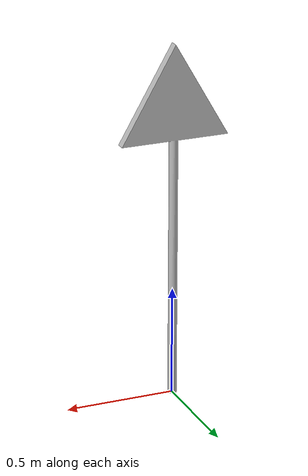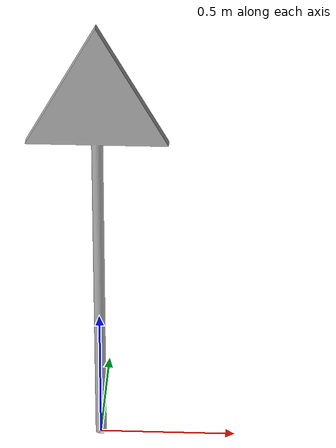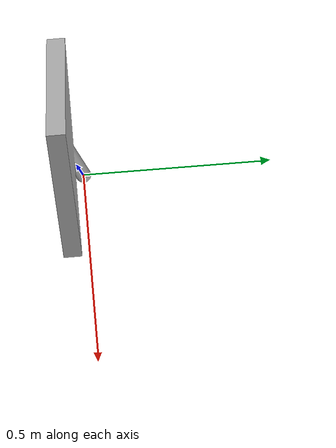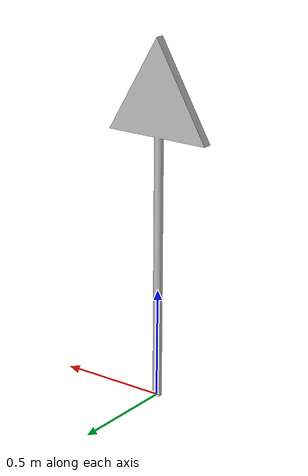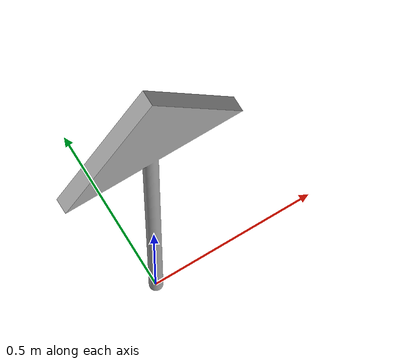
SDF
<?xml version='1.0'?>
<sdf version='1.4'>
  <model name='speed_bump_sign'>
    <static>true</static>
    <link name="speed_bump_sign">
      <visual name="visual">
            <geometry>
                <mesh>
                    <uri>model://speed_bump_sign/materials/meshes/speed_bump_sign.dae</uri>
                    <scale>0.5 0.5 0.5</scale>
                </mesh>
            </geometry>
        </visual>
        <collision name="collision">
            <geometry>
                <mesh>
                    <uri>model://speed_bump_sign/materials/meshes/speed_bump_sign.dae</uri>
                    <scale>0.5 0.5 0.5</scale>
                </mesh>
            </geometry>
        </collision>
    </link>
  </model>
</sdf>
